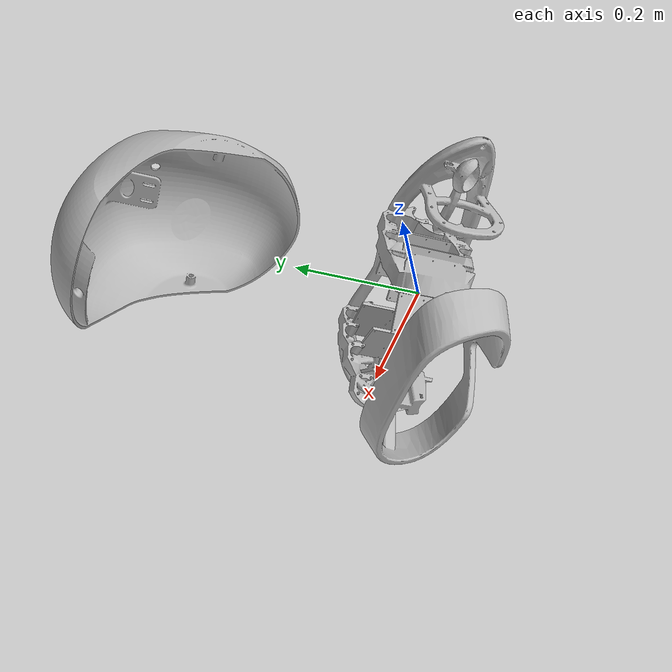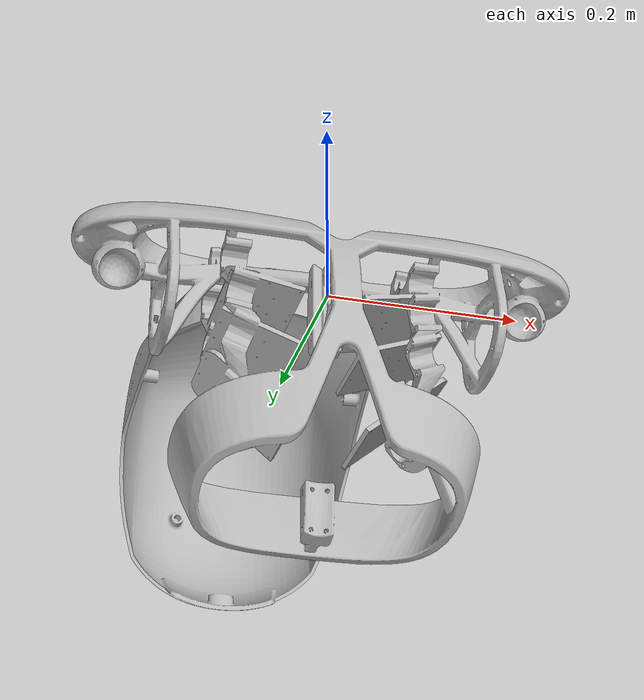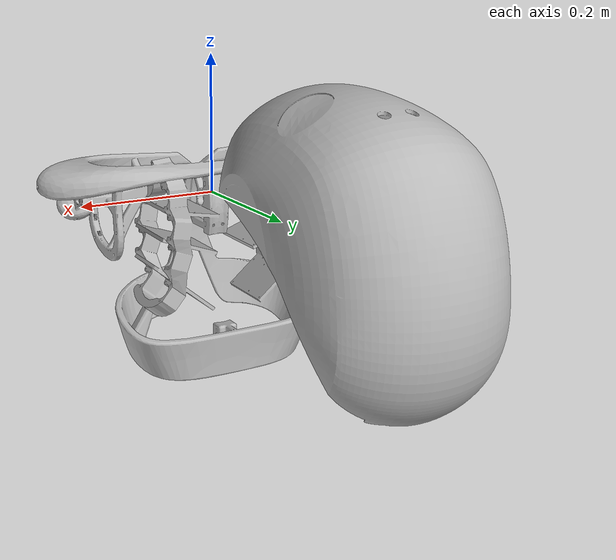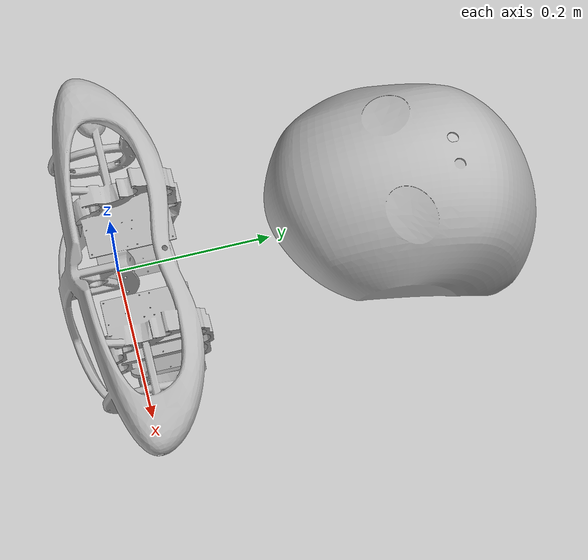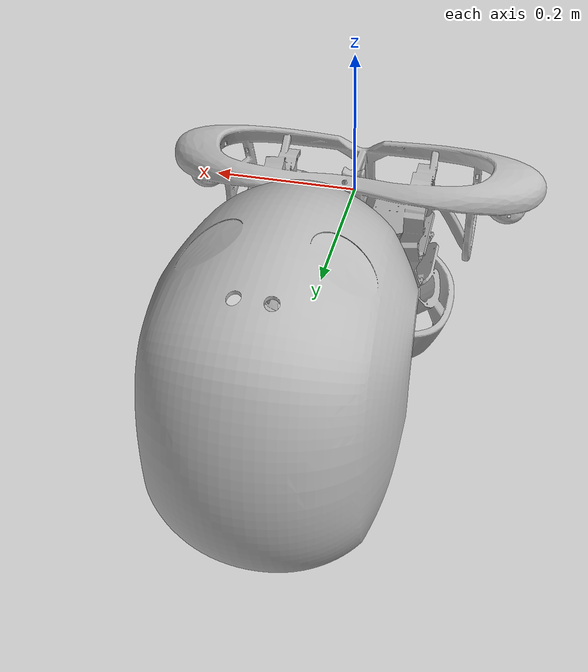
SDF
<?xml version='1.0'?>
<sdf version='1.5'>
  <model name='roboy'>
    <link name='roboy_torso'>
      <pose frame=''>0 0 0 0 0 0</pose>
      <visual name='visual'>
        <geometry>
          <mesh>
            <scale>1 1 1</scale>
            <uri>model://roboy_simplified/dae/p-torso-v04.dae</uri>
          </mesh>
        </geometry>
        <pose frame=''>0 0 0 0 -0 0</pose>
        <cast_shadows>1</cast_shadows>
        <transparency>0</transparency>
      </visual>
    </link>
    <link name='roboy_head'>
      <pose frame=''>0 0.1 0 0 -0 0</pose>
      <visual name='visual'>
        <geometry>
          <mesh>
            <scale>1 1 1</scale>
            <uri>model://roboy_simplified/dae/121213_PROTOTYP_Kopf-Vorderteil.dae</uri>
          </mesh>
        </geometry>
        <pose frame=''>0 0.1 0 0 -0 0</pose>
        <cast_shadows>1</cast_shadows>
        <transparency>0</transparency>
      </visual>
    </link>
  </model>
</sdf>
